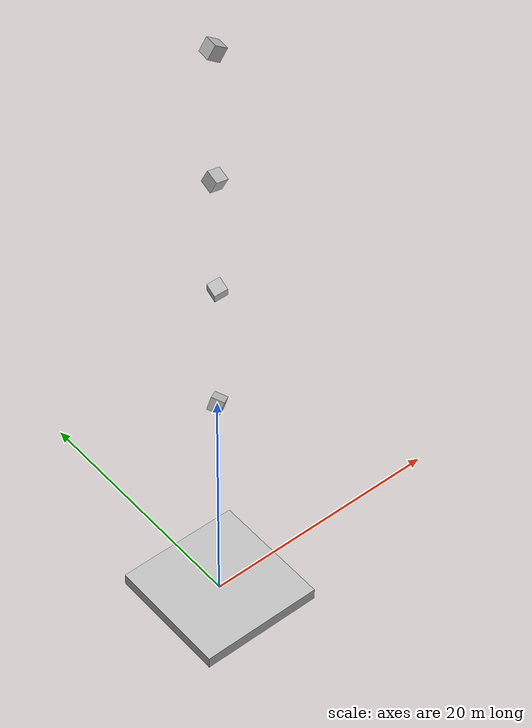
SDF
<?xml version="1.0" ?>
<sdf version="1.4">
  <world name="default">
    <include><uri>model://sun</uri></include>
    <physics type="ode">
      <gravity>0 0 -10.0</gravity>
      <ode>
        <solver>
          <type>quick</type>
          <dt>0.001</dt>
          <iters>10</iters>
          <sor>1.3</sor>
        </solver>
        <constraints>
          <cfm>0.0</cfm>
          <erp>0.2</erp>
          <contact_max_correcting_vel>100.0</contact_max_correcting_vel>
          <contact_surface_layer>0.0</contact_surface_layer>
        </constraints>
      </ode>
    </physics>
    <model name="model1_cube">
      <pose>0 0 0 0 0 0</pose>
      <link name="cube1">
	<pose>0 0 20 1 2 0</pose>
        <inertial>
          <inertia>
            <ixx>1</ixx>
            <ixy>0</ixy>
            <ixz>0</ixz>
            <iyy>1</iyy>
            <iyz>0</iyz>
            <izz>1</izz>
          </inertia>
          <mass>1.0</mass>
        </inertial>
        <visual name="visual">
          <pose>0 0 0 0 0 0</pose>
          <geometry>
            <box>
              <size>1 1 1</size>
            </box>
          </geometry>
          <material>
            <script>Gazebo/WoodPallet</script>
          </material>
        </visual>
	<collision name="coll_cube">
          <pose>0 0 0 0 0 0</pose>
          <max_contacts>250</max_contacts>
          <geometry>
            <box>
              <size>1 1 1</size>
            </box>
          </geometry>
          <surface>
            <friction>
              <ode>
                <mu>0.5</mu>
                <mu2>0.2</mu2>
                <fdir1>1 0 0</fdir1>
                <slip1>0</slip1>
                <slip2>0</slip2>
              </ode>
            </friction>
            <bounce>
              <restitution_coefficient>0</restitution_coefficient>
              <threshold>1000000</threshold>
            </bounce>
            <contact>
              <ode>
                <soft_cfm>0.0</soft_cfm>
                <soft_erp>0.2</soft_erp>
                <kp>1000000000000000</kp>
                <kd>10000000000000</kd>
                <max_vel>100</max_vel>
                <min_depth>0</min_depth>
              </ode>
            </contact>
          </surface>
          <laser_retro>100</laser_retro>
        </collision>
      </link>
    </model>

    <model name="model2_cube">
      <pose>0 0 0 0 0 0</pose>
      <link name="cube1">
	<pose>0.5 0.5 30 1 2 4</pose>
        <inertial>
          <inertia>
            <ixx>1</ixx>
            <ixy>0</ixy>
            <ixz>0</ixz>
            <iyy>1</iyy>
            <iyz>0</iyz>
            <izz>1</izz>
          </inertia>
          <mass>1.0</mass>
        </inertial>
        <visual name="visual">
          <pose>0 0 0 0 0 0</pose>
          <geometry>
            <box>
              <size>1 1 1</size>
            </box>
          </geometry>
          <material>
            <script>Gazebo/WoodPallet</script>
          </material>
        </visual>
	<collision name="coll_cube">
          <pose>0 0 0 0 0 0</pose>
          <max_contacts>250</max_contacts>
          <geometry>
            <box>
              <size>1 1 1</size>
            </box>
          </geometry>
          <surface>
            <friction>
              <ode>
                <mu>0.5</mu>
                <mu2>0.2</mu2>
                <fdir1>1 0 0</fdir1>
                <slip1>0</slip1>
                <slip2>0</slip2>
              </ode>
            </friction>
            <bounce>
              <restitution_coefficient>0</restitution_coefficient>
              <threshold>1000000</threshold>
            </bounce>
            <contact>
              <ode>
                <soft_cfm>0.0</soft_cfm>
                <soft_erp>0.2</soft_erp>
                <kp>1000000000000000</kp>
                <kd>10000000000000</kd>
                <max_vel>100</max_vel>
                <min_depth>0</min_depth>
              </ode>
            </contact>
          </surface>
          <laser_retro>100</laser_retro>
        </collision>
      </link>
    </model>

    <model name="model3_cube">
      <pose>0 0 0 0 0 0</pose>
      <link name="cube1">
	<pose>0 0 40 -1 2 -1</pose>
        <inertial>
          <inertia>
            <ixx>1</ixx>
            <ixy>0</ixy>
            <ixz>0</ixz>
            <iyy>1</iyy>
            <iyz>0</iyz>
            <izz>1</izz>
          </inertia>
          <mass>1.0</mass>
        </inertial>
        <visual name="visual">
          <pose>0 0 0 0 0 0</pose>
          <geometry>
            <box>
              <size>1 1 1</size>
            </box>
          </geometry>
          <material>
            <script>Gazebo/WoodPallet</script>
          </material>
        </visual>
	<collision name="coll_cube">
          <pose>0 0 0 0 0 0</pose>
          <max_contacts>250</max_contacts>
          <geometry>
            <box>
              <size>1 1 1</size>
            </box>
          </geometry>
          <surface>
            <friction>
              <ode>
                <mu>0.5</mu>
                <mu2>0.2</mu2>
                <fdir1>1 0 0</fdir1>
                <slip1>0</slip1>
                <slip2>0</slip2>
              </ode>
            </friction>
            <bounce>
              <restitution_coefficient>0</restitution_coefficient>
              <threshold>1000000</threshold>
            </bounce>
            <contact>
              <ode>
                <soft_cfm>0.0</soft_cfm>
                <soft_erp>0.2</soft_erp>
                <kp>1000000000000000</kp>
                <kd>10000000000000</kd>
                <max_vel>100</max_vel>
                <min_depth>0</min_depth>
              </ode>
            </contact>
          </surface>
          <laser_retro>100</laser_retro>
        </collision>
      </link>
    </model>

    <model name="model4_cube">
      <pose>0 0 0 0 0 0</pose>
      <link name="cube1">
	<pose>0 0 50 0 1 3</pose>
        <inertial>
          <inertia>
            <ixx>1</ixx>
            <ixy>0</ixy>
            <ixz>0</ixz>
            <iyy>1</iyy>
            <iyz>0</iyz>
            <izz>1</izz>
          </inertia>
          <mass>1.0</mass>
        </inertial>
        <visual name="visual">
          <pose>0 0 0 0 0 0</pose>
          <geometry>
            <box>
              <size>1 1 1</size>
            </box>
          </geometry>
          <material>
            <script>Gazebo/WoodPallet</script>
          </material>
        </visual>
	<collision name="coll_cube">
          <pose>0 0 0 0 0 0</pose>
          <max_contacts>250</max_contacts>
          <geometry>
            <box>
              <size>1 1 1</size>
            </box>
          </geometry>
          <surface>
            <friction>
              <ode>
                <mu>0.5</mu>
                <mu2>0.2</mu2>
                <fdir1>1 0 0</fdir1>
                <slip1>0</slip1>
                <slip2>0</slip2>
              </ode>
            </friction>
            <bounce>
              <restitution_coefficient>0</restitution_coefficient>
              <threshold>1000000</threshold>
            </bounce>
            <contact>
              <ode>
                <soft_cfm>0.0</soft_cfm>
                <soft_erp>0.2</soft_erp>
                <kp>1000000000000000</kp>
                <kd>10000000000000</kd>
                <max_vel>100</max_vel>
                <min_depth>0</min_depth>
              </ode>
            </contact>
          </surface>
          <laser_retro>100</laser_retro>
        </collision>
      </link>
    </model>

    <model name="model_ground">
      <static>true</static>
      <pose>0 0 0 0 0 0</pose>
      <link name="ground">
	<pose>0 0 0 0 0 0</pose>
        <inertial>
          <inertia>
            <ixx>1</ixx>
            <ixy>0</ixy>
            <ixz>0</ixz>
            <iyy>1</iyy>
            <iyz>0</iyz>
            <izz>1</izz>
          </inertia>
          <mass>10.0</mass>
        </inertial>
        <visual name="visual">
          <pose>0 0 0 0 0 0</pose>
          <geometry>
            <box>
              <size>10 10 1</size>
            </box>
          </geometry>
          <material>
            <script>Gazebo/WoodPallet</script>
          </material>
        </visual>
        <collision name="coll_ground">
          <pose>0 0 0 0 0 0</pose>
          <max_contacts>250</max_contacts>
          <geometry>
            <box>
              <size>10 10 1</size>
            </box>
          </geometry>
          <surface>
            <friction>
              <ode>
                <mu>0.5</mu>
                <mu2>0.2</mu2>
                <fdir1>1 0 0</fdir1>
                <slip1>0</slip1>
                <slip2>0</slip2>
              </ode>
            </friction>
            <bounce>
              <restitution_coefficient>0</restitution_coefficient>
              <threshold>1000000</threshold>
            </bounce>
            <contact>
              <ode>
                <soft_cfm>0.0</soft_cfm>
                <soft_erp>0.2</soft_erp>
                <kp>1000000000000000</kp>
                <kd>10000000000000</kd>
                <max_vel>100</max_vel>
                <min_depth>0</min_depth>
              </ode>
            </contact>
          </surface>
          <laser_retro>100</laser_retro>
        </collision>
      </link>
    </model>
  </world>
</sdf>
